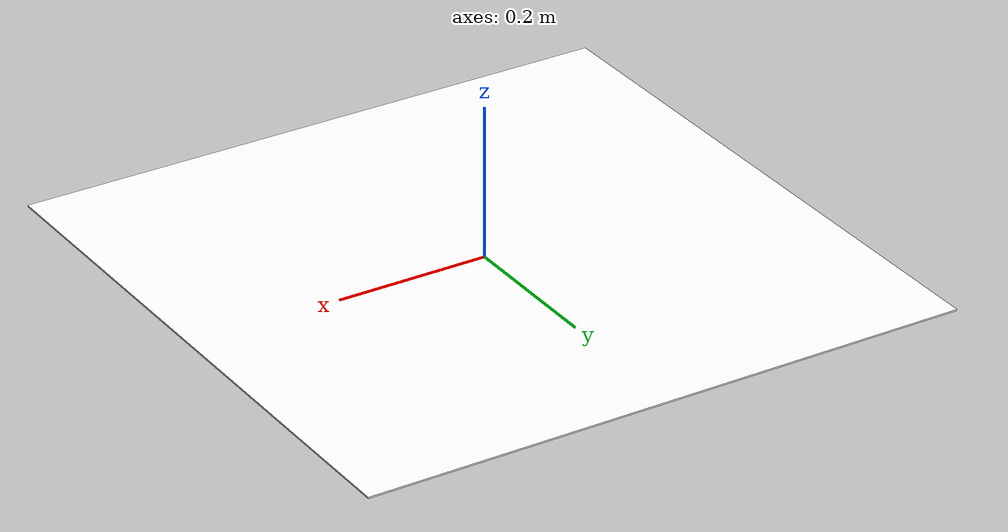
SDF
<?xml version="1.0"?>
<sdf version="1.9">
  <model name="aruco_marker_0">
    <static>true</static>
    <link name="link">
      <visual name="visual">
        <geometry>
          <!-- 실제 마커 크기: 0.8m x 0.8m -->
          <box><size>0.8 0.8 0.002</size></box>
        </geometry>
        <material>
          <ambient>1 1 1 1</ambient>
          <diffuse>1 1 1 1</diffuse>
          <specular>0.1 0.1 0.1 1</specular>
          <pbr>
            <metal>
              <albedo_map>model://aruco_marker_0/materials/textures/aruco_0.png</albedo_map>
            </metal>
          </pbr>
        </material>
      </visual>
      <collision name="collision">
        <geometry>
          <box><size>0.8 0.8 0.002</size></box>
        </geometry>
      </collision>
    </link>
  </model>
</sdf>
